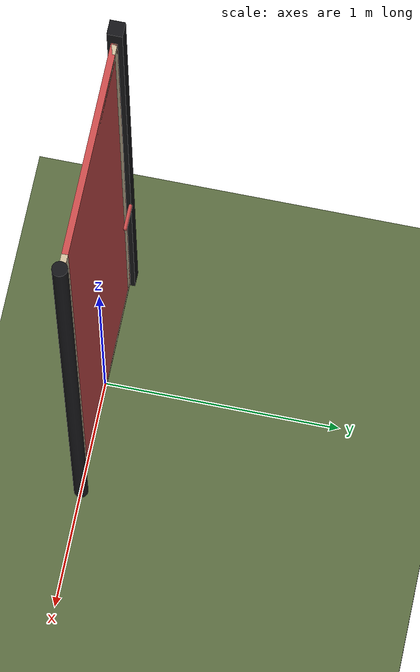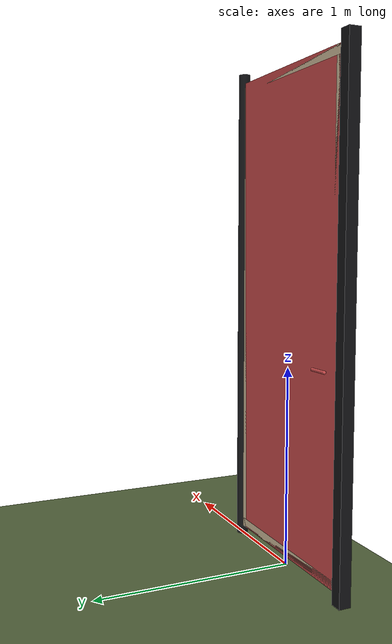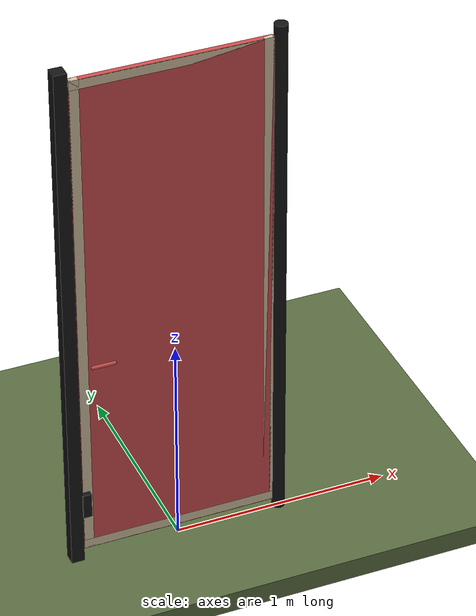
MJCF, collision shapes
<?xml version="1.0" ?>
<mujoco model="db0713_gate_swing_minimal">
  <compiler angle="radian" meshdir="../../hardware" texturedir="../../textures" autolimits="true" inertiafromgeom="false"/>
  <option timestep="0.002" integrator="implicitfast" cone="elliptic" impratio="10" noslip_iterations="3">
    <flag multiccd="enable"/>
  </option>
  <size memory="16M"/>
  <default>
    <geom condim="4" solref="0.005 1" solimp="0.95 0.99 0.001"/>
    <joint solreflimit="0.005 1" solimplimit="0.95 0.99 0.001"/>
    <tendon solreflimit="0.005 1"/>
    <equality solref="0.002 1"/>
  </default>
  <visual>
    <headlight ambient="0.4 0.4 0.4" diffuse="0.7 0.7 0.7" specular="0.2 0.2 0.2"/>
    <quality shadowsize="4096"/>
    <map znear="0.01" zfar="60"/>
  </visual>
  <asset>
    <mesh name="ring_cc5c941a8a" file="ring_cc5c941a8a.obj"/>
    <material name="mat_floor" rgba="0.35 0.42 0.25 1" specular="0.2" shininess="0.15" reflectance="0"/>
    <material name="mat_wall" rgba="0.78 0.76 0.7 1" specular="0.2" shininess="0.1" reflectance="0"/>
    <material name="mat_leaf" rgba="0.82 0.75 0.62 1" specular="0.23" shininess="0.61" reflectance="0.02"/>
    <material name="mat_hinge" rgba="0.65 0.66 0.68 1" specular="0.74" shininess="0.5" reflectance="0.36"/>
    <material name="mat_op_wrought_iron" rgba="0.08 0.08 0.09 1" specular="0.56" shininess="0.25" reflectance="0.24"/>
    <material name="mat_frame" rgba="0.08 0.08 0.09 1" specular="0.56" shininess="0.25" reflectance="0.24"/>
    <material name="mat_bumper_stop" rgba="0.08 0.08 0.08 1" specular="0.2" shininess="0.1" reflectance="0"/>
    <material name="mat_stop_base" rgba="0.9 0.9 0.92 1" specular="0.8" shininess="0.9" reflectance="0.4"/>
    <texture name="skybox" type="skybox" builtin="gradient" rgb1="0.6 0.7 0.85" rgb2="0.9 0.92 0.95" width="256" height="256"/>
  </asset>
  <worldbody>
    <light name="sun" pos="1.5 -2.5 4" dir="-0.3 0.5 -0.8" directional="true" diffuse="0.8 0.8 0.8" specular="0.3 0.3 0.3" castshadow="true"/>
    <light name="fill" pos="-1.5 2.5 3" dir="0.3 -0.5 -0.7" directional="true" diffuse="0.35 0.35 0.4" castshadow="false"/>
    <camera name="robot_view" pos="0 -2.89375 2.02025" xyaxes="1 0 0 0 0.26963 0.962964" fovy="52"/>
    <camera name="far_view" pos="0 2.89375 2.02025" xyaxes="-1 0 0 0 -0.26963 0.962964" fovy="52"/>
    <camera name="iso" pos="-2.19925 -2.43075 2.48325" xyaxes="0.741536 -0.670913 0 0.242917 0.268487 0.932151" fovy="46"/>
    <camera name="detail_handle" pos="-0.162 -0.8445 1.32" xyaxes="0.97561 0.219512 0 -0.070934 0.315262 0.94635" fovy="38"/>
    <geom name="floor" type="box" size="6 6 0.05" pos="0 0 -0.05" material="mat_floor" group="0" contype="1" conaffinity="1" friction="0.8 0.005 0.0001" density="2400"/>
    <geom name="post_hinge" type="cylinder" size="0.03 1.25" pos="0.486 0 1.25" material="mat_frame" group="0" contype="1" conaffinity="1" friction="0.6 0.005 0.0001" density="800"/>
    <geom name="post_latch" type="box" size="0.03 0.03 1.25" pos="-0.486 0 1.25" material="mat_frame" group="0" contype="1" conaffinity="1" friction="0.6 0.005 0.0001" density="800"/>
    <geom name="gate_stop" type="box" size="0.02 0.012 0.06" pos="-0.436 -0.0245 0.3" material="mat_frame" group="0" contype="1" conaffinity="1" friction="0.6 0.005 0.0001" density="800"/>
    <site name="approach_point" pos="0 -1.5 0" quat="1 0 0 0" size="0.05" rgba="0.2 0.9 0.2 0.5" group="4"/>
    <site name="goal_point" pos="0 1.5 0" quat="1 0 0 0" size="0.05" rgba="0.2 0.9 0.2 0.5" group="4"/>
    <site name="door_plane_center" pos="0 0 1.21" quat="1 0 0 0" size="0.02" rgba="0.2 0.9 0.2 0.5" group="4"/>
    <body name="leaf" pos="0.456 0 0">
      <inertial pos="-0.456863 0 1.24819" mass="62.396" quat="0.500386 -0.500372 -0.499614 -0.499627" diaginertia="4.253025294 29.640992345 33.88434116"/>
      <joint name="leaf_hinge" type="hinge" axis="0 0 -1" pos="-0.003 0.05 0" limited="true" range="0 1.745329" damping="0.33438" frictionloss="5.276959" armature="0.02"/>
      <geom name="leaf_slab_col" type="box" size="0.45 0.0125 1.2" pos="-0.453 0 1.25" material="mat_leaf" group="3" contype="1" conaffinity="1" rgba="0.8 0.3 0.3 0.25" friction="0.45 0.005 0.0001" density="1"/>
      <geom name="leaf_rail_b" type="box" size="0.45 0.0125 0.0225" pos="-0.453 0 0.0725" material="mat_leaf" group="1" contype="0" conaffinity="0" density="1"/>
      <geom name="leaf_rail_t" type="box" size="0.45 0.0125 0.0225" pos="-0.453 0 2.4275" material="mat_leaf" group="1" contype="0" conaffinity="0" density="1"/>
      <geom name="leaf_stile_h" type="box" size="0.0225 0.0125 1.2" pos="-0.0255 0 1.25" material="mat_leaf" group="1" contype="0" conaffinity="0" density="1"/>
      <geom name="leaf_stile_l" type="box" size="0.0225 0.0125 1.2" pos="-0.8805 0 1.25" material="mat_leaf" group="1" contype="0" conaffinity="0" density="1"/>
      <geom name="leaf_ring_pull_n" type="mesh" mesh="ring_cc5c941a8a" pos="-0.798 -0.0125 1.1" quat="0 0 -0.707107 0.707107" material="mat_op_wrought_iron" group="1" contype="0" conaffinity="0" density="3000"/>
      <geom name="leaf_ring_pull_col_n" type="capsule" size="0.008 0.05" pos="-0.798 -0.0445 1.04" quat="0.707107 0 0.707107 0" material="mat_op_wrought_iron" group="3" contype="1" conaffinity="1" rgba="0.8 0.3 0.3 0.25" friction="0.7 0.01 0.0001" density="3000"/>
      <geom name="leaf_ring_pull_p" type="mesh" mesh="ring_cc5c941a8a" pos="-0.798 0.0125 1.1" quat="0 0 0.707107 0.707107" material="mat_op_wrought_iron" group="1" contype="0" conaffinity="0" density="3000"/>
      <geom name="leaf_ring_pull_col_p" type="capsule" size="0.008 0.05" pos="-0.798 0.0445 1.04" quat="0.707107 0 0.707107 0" material="mat_op_wrought_iron" group="3" contype="1" conaffinity="1" rgba="0.8 0.3 0.3 0.25" friction="0.7 0.01 0.0001" density="3000"/>
      <site name="leaf_ring_pull_grip_n" pos="-0.798 -0.0445 1.04" quat="1 0 0 0" size="0.012" rgba="0.2 0.9 0.2 0.5" group="4"/>
      <site name="leaf_ring_pull_grip_p" pos="-0.798 0.0445 1.04" quat="1 0 0 0" size="0.012" rgba="0.2 0.9 0.2 0.5" group="4"/>
      <site name="leaf_edge_mid" pos="-0.903 0 1.2" quat="1 0 0 0" size="0.02" rgba="0.2 0.9 0.2 0.5" group="4"/>
    </body>
  </worldbody>
  <sensor>
    <jointpos name="leaf_hinge_pos" joint="leaf_hinge"/>
    <jointvel name="leaf_hinge_vel" joint="leaf_hinge"/>
  </sensor>
</mujoco>
